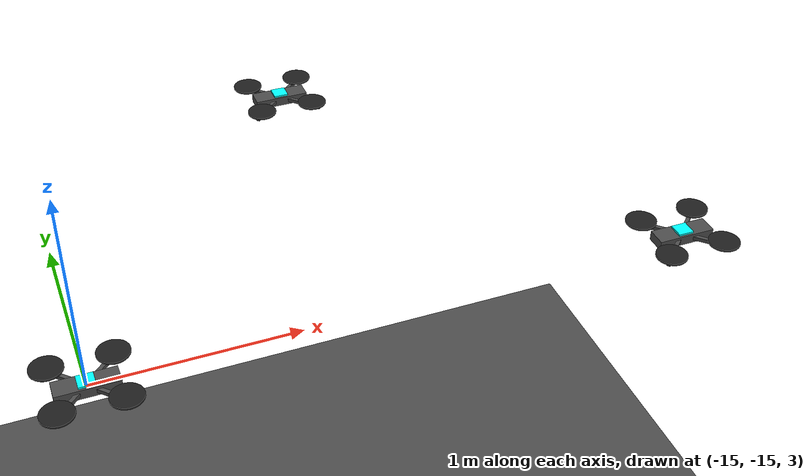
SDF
<sdf version="1.6">
 <world name="formation_comparison_world">
  <model name="ground">
   <static>true</static>
   <link name="link">
    <collision name="collision">
     <geometry><plane><normal>0 0 1</normal><size>100 100</size></plane></geometry>
    </collision>
    <visual name="visual">
     <geometry><plane><normal>0 0 1</normal><size>100 100</size></plane></geometry>
     <material>
      <script><uri>file://media/materials/scripts/gazebo.material</uri><name>Gazebo/Asphalt</name></script>
     </material>
    </visual>
   </link>
  </model>
  <model name="agent_0">
   <pose>-15 -15.0 3.0 0 0 0</pose>
   <static>false</static>
   <link name="base_link">
    <inertial><mass>1.5</mass><inertia><ixx>0.03</ixx><iyy>0.03</iyy><izz>0.05</izz></inertia></inertial>
    <visual name="body">
     <geometry><box><size>0.3 0.1 0.05</size></box></geometry>
     <material>
      <script><uri>file://media/materials/scripts/gazebo.material</uri><name>Gazebo/DarkGrey</name></script>
     </material>
    </visual>
    <visual name="arm1">
     <pose>0.1 0.1 0 0 0 0.785</pose>
     <geometry><box><size>0.25 0.02 0.02</size></box></geometry>
     <material>
      <script><uri>file://media/materials/scripts/gazebo.material</uri><name>Gazebo/DarkGrey</name></script>
     </material>
    </visual>
    <visual name="arm2">
     <pose>-0.1 0.1 0 0 0 -0.785</pose>
     <geometry><box><size>0.25 0.02 0.02</size></box></geometry>
     <material>
      <script><uri>file://media/materials/scripts/gazebo.material</uri><name>Gazebo/DarkGrey</name></script>
     </material>
    </visual>
    <visual name="arm3">
     <pose>0.1 -0.1 0 0 0 -0.785</pose>
     <geometry><box><size>0.25 0.02 0.02</size></box></geometry>
     <material>
      <script><uri>file://media/materials/scripts/gazebo.material</uri><name>Gazebo/DarkGrey</name></script>
     </material>
    </visual>
    <visual name="arm4">
     <pose>-0.1 -0.1 0 0 0 0.785</pose>
     <geometry><box><size>0.25 0.02 0.02</size></box></geometry>
     <material>
      <script><uri>file://media/materials/scripts/gazebo.material</uri><name>Gazebo/DarkGrey</name></script>
     </material>
    </visual>
    <visual name="indicator">
     <pose>0 0 0.03 0 0 0</pose>
     <geometry><box><size>0.08 0.08 0.01</size></box></geometry>
     <material><ambient>0 1 1 1</ambient><diffuse>0 1 1 1</diffuse><emissive>0 1 1 1</emissive></material>
    </visual>
    <visual name="prop_fl">
     <pose>0.15 0.15 0.02 0 0 0</pose>
     <geometry><cylinder><radius>0.08</radius><length>0.01</length></cylinder></geometry>
     <material>
      <script><uri>file://media/materials/scripts/gazebo.material</uri><name>Gazebo/Black</name></script>
     </material>
    </visual>
    <visual name="prop_fr">
     <pose>0.15 -0.15 0.02 0 0 0</pose>
     <geometry><cylinder><radius>0.08</radius><length>0.01</length></cylinder></geometry>
     <material>
      <script><uri>file://media/materials/scripts/gazebo.material</uri><name>Gazebo/Black</name></script>
     </material>
    </visual>
    <visual name="prop_rl">
     <pose>-0.15 0.15 0.02 0 0 0</pose>
     <geometry><cylinder><radius>0.08</radius><length>0.01</length></cylinder></geometry>
     <material>
      <script><uri>file://media/materials/scripts/gazebo.material</uri><name>Gazebo/Black</name></script>
     </material>
    </visual>
    <visual name="prop_rr">
     <pose>-0.15 -0.15 0.02 0 0 0</pose>
     <geometry><cylinder><radius>0.08</radius><length>0.01</length></cylinder></geometry>
     <material>
      <script><uri>file://media/materials/scripts/gazebo.material</uri><name>Gazebo/Black</name></script>
     </material>
    </visual>
    <collision name="collision"><geometry><box><size>0.4 0.4 0.1</size></box></geometry></collision>
   </link>
   <plugin name="simple_drone_plugin" filename="libsimple_drone_plugin.so">
    <namespace>agent_0</namespace>
    <target_altitude>3.0</target_altitude>
   </plugin>
  </model>
  <model name="agent_1">
   <pose>-12 -15.0 3.0 0 0 0</pose>
   <static>false</static>
   <link name="base_link">
    <inertial><mass>1.5</mass><inertia><ixx>0.03</ixx><iyy>0.03</iyy><izz>0.05</izz></inertia></inertial>
    <visual name="body">
     <geometry><box><size>0.3 0.1 0.05</size></box></geometry>
     <material>
      <script><uri>file://media/materials/scripts/gazebo.material</uri><name>Gazebo/DarkGrey</name></script>
     </material>
    </visual>
    <visual name="arm1">
     <pose>0.1 0.1 0 0 0 0.785</pose>
     <geometry><box><size>0.25 0.02 0.02</size></box></geometry>
     <material>
      <script><uri>file://media/materials/scripts/gazebo.material</uri><name>Gazebo/DarkGrey</name></script>
     </material>
    </visual>
    <visual name="arm2">
     <pose>-0.1 0.1 0 0 0 -0.785</pose>
     <geometry><box><size>0.25 0.02 0.02</size></box></geometry>
     <material>
      <script><uri>file://media/materials/scripts/gazebo.material</uri><name>Gazebo/DarkGrey</name></script>
     </material>
    </visual>
    <visual name="arm3">
     <pose>0.1 -0.1 0 0 0 -0.785</pose>
     <geometry><box><size>0.25 0.02 0.02</size></box></geometry>
     <material>
      <script><uri>file://media/materials/scripts/gazebo.material</uri><name>Gazebo/DarkGrey</name></script>
     </material>
    </visual>
    <visual name="arm4">
     <pose>-0.1 -0.1 0 0 0 0.785</pose>
     <geometry><box><size>0.25 0.02 0.02</size></box></geometry>
     <material>
      <script><uri>file://media/materials/scripts/gazebo.material</uri><name>Gazebo/DarkGrey</name></script>
     </material>
    </visual>
    <visual name="indicator">
     <pose>0 0 0.03 0 0 0</pose>
     <geometry><box><size>0.08 0.08 0.01</size></box></geometry>
     <material><ambient>0 1 1 1</ambient><diffuse>0 1 1 1</diffuse><emissive>0 1 1 1</emissive></material>
    </visual>
    <visual name="prop_fl">
     <pose>0.15 0.15 0.02 0 0 0</pose>
     <geometry><cylinder><radius>0.08</radius><length>0.01</length></cylinder></geometry>
     <material>
      <script><uri>file://media/materials/scripts/gazebo.material</uri><name>Gazebo/Black</name></script>
     </material>
    </visual>
    <visual name="prop_fr">
     <pose>0.15 -0.15 0.02 0 0 0</pose>
     <geometry><cylinder><radius>0.08</radius><length>0.01</length></cylinder></geometry>
     <material>
      <script><uri>file://media/materials/scripts/gazebo.material</uri><name>Gazebo/Black</name></script>
     </material>
    </visual>
    <visual name="prop_rl">
     <pose>-0.15 0.15 0.02 0 0 0</pose>
     <geometry><cylinder><radius>0.08</radius><length>0.01</length></cylinder></geometry>
     <material>
      <script><uri>file://media/materials/scripts/gazebo.material</uri><name>Gazebo/Black</name></script>
     </material>
    </visual>
    <visual name="prop_rr">
     <pose>-0.15 -0.15 0.02 0 0 0</pose>
     <geometry><cylinder><radius>0.08</radius><length>0.01</length></cylinder></geometry>
     <material>
      <script><uri>file://media/materials/scripts/gazebo.material</uri><name>Gazebo/Black</name></script>
     </material>
    </visual>
    <collision name="collision"><geometry><box><size>0.4 0.4 0.1</size></box></geometry></collision>
   </link>
   <plugin name="simple_drone_plugin" filename="libsimple_drone_plugin.so">
    <namespace>agent_1</namespace>
    <target_altitude>3.0</target_altitude>
   </plugin>
  </model>
  <model name="agent_2">
   <pose>-13.5 -13.0 3.0 0 0 0</pose>
   <static>false</static>
   <link name="base_link">
    <inertial><mass>1.5</mass><inertia><ixx>0.03</ixx><iyy>0.03</iyy><izz>0.05</izz></inertia></inertial>
    <visual name="body">
     <geometry><box><size>0.3 0.1 0.05</size></box></geometry>
     <material>
      <script><uri>file://media/materials/scripts/gazebo.material</uri><name>Gazebo/DarkGrey</name></script>
     </material>
    </visual>
    <visual name="arm1">
     <pose>0.1 0.1 0 0 0 0.785</pose>
     <geometry><box><size>0.25 0.02 0.02</size></box></geometry>
     <material>
      <script><uri>file://media/materials/scripts/gazebo.material</uri><name>Gazebo/DarkGrey</name></script>
     </material>
    </visual>
    <visual name="arm2">
     <pose>-0.1 0.1 0 0 0 -0.785</pose>
     <geometry><box><size>0.25 0.02 0.02</size></box></geometry>
     <material>
      <script><uri>file://media/materials/scripts/gazebo.material</uri><name>Gazebo/DarkGrey</name></script>
     </material>
    </visual>
    <visual name="arm3">
     <pose>0.1 -0.1 0 0 0 -0.785</pose>
     <geometry><box><size>0.25 0.02 0.02</size></box></geometry>
     <material>
      <script><uri>file://media/materials/scripts/gazebo.material</uri><name>Gazebo/DarkGrey</name></script>
     </material>
    </visual>
    <visual name="arm4">
     <pose>-0.1 -0.1 0 0 0 0.785</pose>
     <geometry><box><size>0.25 0.02 0.02</size></box></geometry>
     <material>
      <script><uri>file://media/materials/scripts/gazebo.material</uri><name>Gazebo/DarkGrey</name></script>
     </material>
    </visual>
    <visual name="indicator">
     <pose>0 0 0.03 0 0 0</pose>
     <geometry><box><size>0.08 0.08 0.01</size></box></geometry>
     <material><ambient>0 1 1 1</ambient><diffuse>0 1 1 1</diffuse><emissive>0 1 1 1</emissive></material>
    </visual>
    <visual name="prop_fl">
     <pose>0.15 0.15 0.02 0 0 0</pose>
     <geometry><cylinder><radius>0.08</radius><length>0.01</length></cylinder></geometry>
     <material>
      <script><uri>file://media/materials/scripts/gazebo.material</uri><name>Gazebo/Black</name></script>
     </material>
    </visual>
    <visual name="prop_fr">
     <pose>0.15 -0.15 0.02 0 0 0</pose>
     <geometry><cylinder><radius>0.08</radius><length>0.01</length></cylinder></geometry>
     <material>
      <script><uri>file://media/materials/scripts/gazebo.material</uri><name>Gazebo/Black</name></script>
     </material>
    </visual>
    <visual name="prop_rl">
     <pose>-0.15 0.15 0.02 0 0 0</pose>
     <geometry><cylinder><radius>0.08</radius><length>0.01</length></cylinder></geometry>
     <material>
      <script><uri>file://media/materials/scripts/gazebo.material</uri><name>Gazebo/Black</name></script>
     </material>
    </visual>
    <visual name="prop_rr">
     <pose>-0.15 -0.15 0.02 0 0 0</pose>
     <geometry><cylinder><radius>0.08</radius><length>0.01</length></cylinder></geometry>
     <material>
      <script><uri>file://media/materials/scripts/gazebo.material</uri><name>Gazebo/Black</name></script>
     </material>
    </visual>
    <collision name="collision"><geometry><box><size>0.4 0.4 0.1</size></box></geometry></collision>
   </link>
   <plugin name="simple_drone_plugin" filename="libsimple_drone_plugin.so">
    <namespace>agent_2</namespace>
    <target_altitude>3.0</target_altitude>
   </plugin>
  </model>
 </world>
</sdf>
